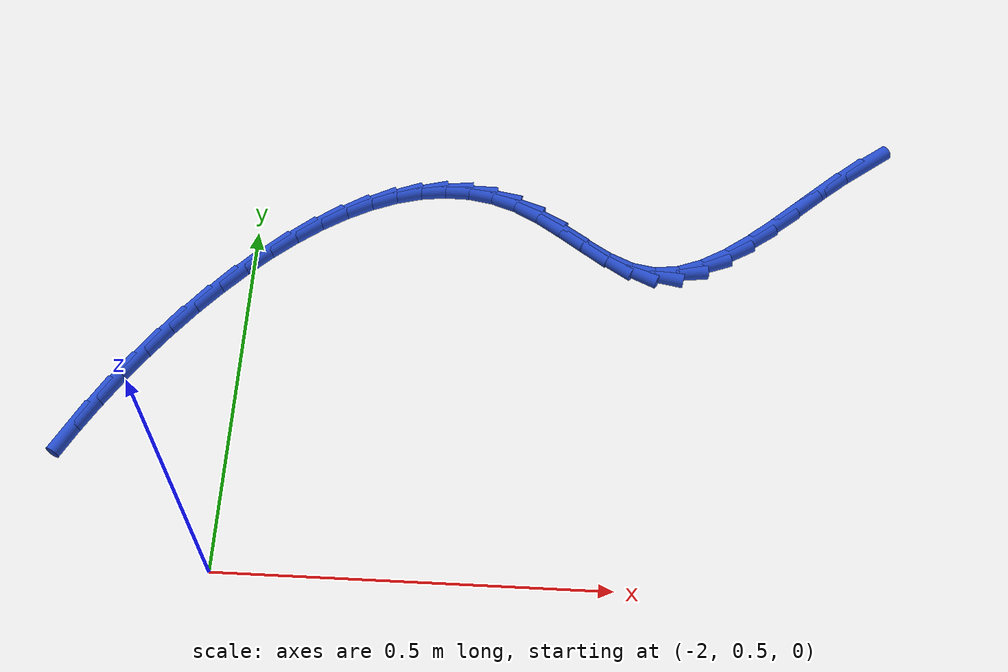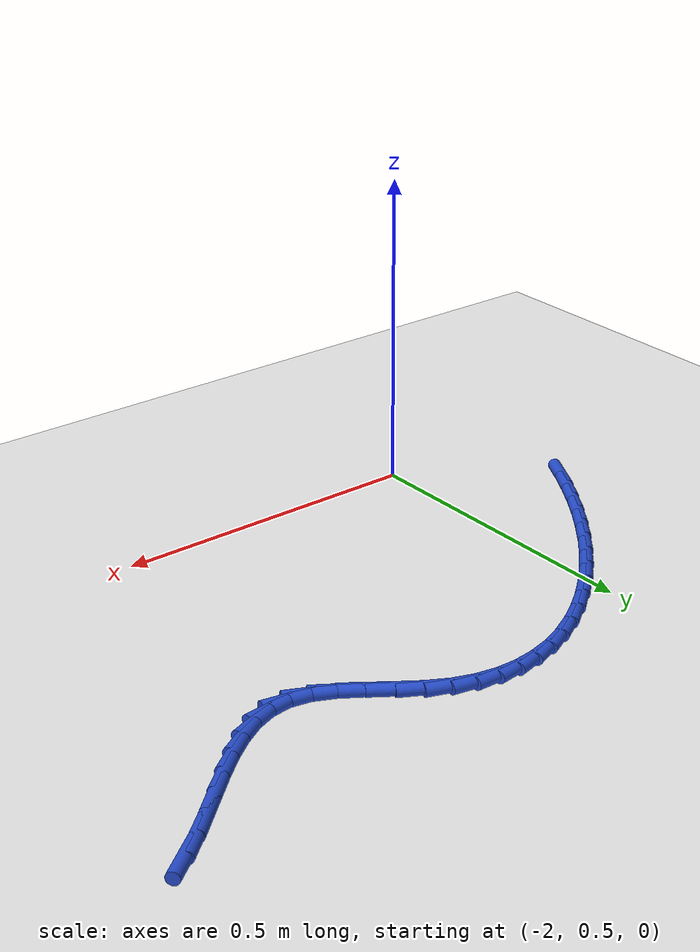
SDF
<sdf version="1.6">
 <world name="default">
  <model name="ground_plane">
   <static>1</static>
   <link name="link">
    <collision name="collision">
     <geometry><plane><normal>0 0 1</normal><size>100 100</size></plane></geometry>
     <surface><friction><ode><mu>100</mu><mu2>50</mu2></ode></friction></surface>
    </collision>
    <visual name="visual">
     <cast_shadows>0</cast_shadows>
     <geometry><plane><normal>0 0 1</normal><size>100 100</size></plane></geometry>
     <material>
      <script><uri>file://media/materials/scripts/gazebo.material</uri><name>Gazebo/WhiteGlow</name></script>
     </material>
    </visual>
   </link>
  </model>
  <model name="line">
   <link name="link_50">
    <pose>-1.1548657924680907 1.1544109606910593 0.01 0 1.57 0.6456836770044759</pose>
    <collision name="collision">
     <geometry><cylinder><radius>0.01</radius><length>0.08</length></cylinder></geometry>
    </collision>
    <visual name="visual">
     <material>
      <script><name>Gazebo/Blue</name><uri>file://media/materials/scripts/gazebo.material</uri></script>
     </material>
     <geometry><cylinder><radius>0.01</radius><length>0.08</length></cylinder></geometry>
    </visual>
   </link>
   <link name="link_51">
    <pose>-1.1877144624271152 1.129662251771773 0.01 0 1.57 0.702430429451977</pose>
    <collision name="collision">
     <geometry><cylinder><radius>0.01</radius><length>0.08</length></cylinder></geometry>
    </collision>
    <visual name="visual">
     <material>
      <script><name>Gazebo/Blue</name><uri>file://media/materials/scripts/gazebo.material</uri></script>
     </material>
     <geometry><cylinder><radius>0.01</radius><length>0.08</length></cylinder></geometry>
    </visual>
   </link>
   <link name="link_52">
    <pose>-1.2207835159981775 1.101670898193779 0.01 0 1.57 0.7272583935490622</pose>
    <collision name="collision">
     <geometry><cylinder><radius>0.01</radius><length>0.08</length></cylinder></geometry>
    </collision>
    <visual name="visual">
     <material>
      <script><name>Gazebo/Blue</name><uri>file://media/materials/scripts/gazebo.material</uri></script>
     </material>
     <geometry><cylinder><radius>0.01</radius><length>0.08</length></cylinder></geometry>
    </visual>
   </link>
   <link name="link_53">
    <pose>-1.2539974029087042 1.0721107944591506 0.01 0 1.57 0.7244548420812014</pose>
    <collision name="collision">
     <geometry><cylinder><radius>0.01</radius><length>0.08</length></cylinder></geometry>
    </collision>
    <visual name="visual">
     <material>
      <script><name>Gazebo/Blue</name><uri>file://media/materials/scripts/gazebo.material</uri></script>
     </material>
     <geometry><cylinder><radius>0.01</radius><length>0.08</length></cylinder></geometry>
    </visual>
   </link>
   <link name="link_54">
    <pose>-1.287280572886123 1.0426558350699588 0.01 0 1.57 0.6937650496179695</pose>
    <collision name="collision">
     <geometry><cylinder><radius>0.01</radius><length>0.08</length></cylinder></geometry>
    </collision>
    <visual name="visual">
     <material>
      <script><name>Gazebo/Blue</name><uri>file://media/materials/scripts/gazebo.material</uri></script>
     </material>
     <geometry><cylinder><radius>0.01</radius><length>0.08</length></cylinder></geometry>
    </visual>
   </link>
   <link name="link_55">
    <pose>-1.3205574756578609 1.014979914528276 0.01 0 1.57 0.6303925082494315</pose>
    <collision name="collision">
     <geometry><cylinder><radius>0.01</radius><length>0.08</length></cylinder></geometry>
    </collision>
    <visual name="visual">
     <material>
      <script><name>Gazebo/Blue</name><uri>file://media/materials/scripts/gazebo.material</uri></script>
     </material>
     <geometry><cylinder><radius>0.01</radius><length>0.08</length></cylinder></geometry>
    </visual>
   </link>
   <link name="link_56">
    <pose>-1.3537525609513443 0.990756927336174 0.01 0 1.57 0.524094072703477</pose>
    <collision name="collision">
     <geometry><cylinder><radius>0.01</radius><length>0.08</length></cylinder></geometry>
    </collision>
    <visual name="visual">
     <material>
      <script><name>Gazebo/Blue</name><uri>file://media/materials/scripts/gazebo.material</uri></script>
     </material>
     <geometry><cylinder><radius>0.01</radius><length>0.08</length></cylinder></geometry>
    </visual>
   </link>
   <link name="link_57">
    <pose>-1.3867902784940016 0.9716607679957248 0.01 0 1.57 0.3586006119283363</pose>
    <collision name="collision">
     <geometry><cylinder><radius>0.01</radius><length>0.08</length></cylinder></geometry>
    </collision>
    <visual name="visual">
     <material>
      <script><name>Gazebo/Blue</name><uri>file://media/materials/scripts/gazebo.material</uri></script>
     </material>
     <geometry><cylinder><radius>0.01</radius><length>0.08</length></cylinder></geometry>
    </visual>
   </link>
   <link name="link_58">
    <pose>-1.4195950780132582 0.9593653310090001 0.01 0 1.57 0.11703961110177963</pose>
    <collision name="collision">
     <geometry><cylinder><radius>0.01</radius><length>0.08</length></cylinder></geometry>
    </collision>
    <visual name="visual">
     <material>
      <script><name>Gazebo/Blue</name><uri>file://media/materials/scripts/gazebo.material</uri></script>
     </material>
     <geometry><cylinder><radius>0.01</radius><length>0.08</length></cylinder></geometry>
    </visual>
   </link>
   <link name="link_59">
    <pose>-1.4520914092365431 0.955544510878072 0.01 0 1.57 -0.18950009768322418</pose>
    <collision name="collision">
     <geometry><cylinder><radius>0.01</radius><length>0.08</length></cylinder></geometry>
    </collision>
    <visual name="visual">
     <material>
      <script><name>Gazebo/Blue</name><uri>file://media/materials/scripts/gazebo.material</uri></script>
     </material>
     <geometry><cylinder><radius>0.01</radius><length>0.08</length></cylinder></geometry>
    </visual>
   </link>
   <link name="link_60">
    <pose>-1.4842132125528649 0.9617055207821021 0.01 0 1.57 -0.44080182856185796</pose>
    <collision name="collision">
     <geometry><cylinder><radius>0.01</radius><length>0.08</length></cylinder></geometry>
    </collision>
    <visual name="visual">
     <material>
      <script><name>Gazebo/Blue</name><uri>file://media/materials/scripts/gazebo.material</uri></script>
     </material>
     <geometry><cylinder><radius>0.01</radius><length>0.08</length></cylinder></geometry>
    </visual>
   </link>
   <link name="link_61">
    <pose>-1.516044369842912 0.9767222015085499 0.01 0 1.57 -0.5766342609409975</pose>
    <collision name="collision">
     <geometry><cylinder><radius>0.01</radius><length>0.08</length></cylinder></geometry>
    </collision>
    <visual name="visual">
     <material>
      <script><name>Gazebo/Blue</name><uri>file://media/materials/scripts/gazebo.material</uri></script>
     </material>
     <geometry><cylinder><radius>0.01</radius><length>0.08</length></cylinder></geometry>
    </visual>
   </link>
   <link name="link_62">
    <pose>-1.5477883851003071 0.9973675105861908 0.01 0 1.57 -0.6249845077806354</pose>
    <collision name="collision">
     <geometry><cylinder><radius>0.01</radius><length>0.08</length></cylinder></geometry>
    </collision>
    <visual name="visual">
     <material>
      <script><name>Gazebo/Blue</name><uri>file://media/materials/scripts/gazebo.material</uri></script>
     </material>
     <geometry><cylinder><radius>0.01</radius><length>0.08</length></cylinder></geometry>
    </visual>
   </link>
   <link name="link_63">
    <pose>-1.5796520919291819 1.0203559287053485 0.01 0 1.57 -0.6004968038015023</pose>
    <collision name="collision">
     <geometry><cylinder><radius>0.01</radius><length>0.08</length></cylinder></geometry>
    </collision>
    <visual name="visual">
     <material>
      <script><name>Gazebo/Blue</name><uri>file://media/materials/scripts/gazebo.material</uri></script>
     </material>
     <geometry><cylinder><radius>0.01</radius><length>0.08</length></cylinder></geometry>
    </visual>
   </link>
   <link name="link_64">
    <pose>-1.611842323933668 1.0424019365563462 0.01 0 1.57 -0.4995642378201424</pose>
    <collision name="collision">
     <geometry><cylinder><radius>0.01</radius><length>0.08</length></cylinder></geometry>
    </collision>
    <visual name="visual">
     <material>
      <script><name>Gazebo/Blue</name><uri>file://media/materials/scripts/gazebo.material</uri></script>
     </material>
     <geometry><cylinder><radius>0.01</radius><length>0.08</length></cylinder></geometry>
    </visual>
   </link>
   <link name="link_65">
    <pose>-1.644562260707341 1.060258410495363 0.01 0 1.57 -0.34372883033076274</pose>
    <collision name="collision">
     <geometry><cylinder><radius>0.01</radius><length>0.08</length></cylinder></geometry>
    </collision>
    <visual name="visual">
     <material>
      <script><name>Gazebo/Blue</name><uri>file://media/materials/scripts/gazebo.material</uri></script>
     </material>
     <geometry><cylinder><radius>0.01</radius><length>0.08</length></cylinder></geometry>
    </visual>
   </link>
   <link name="link_66">
    <pose>-1.6778720439172352 1.0721812429063255 0.01 0 1.57 -0.18165765670270456</pose>
    <collision name="collision">
     <geometry><cylinder><radius>0.01</radius><length>0.08</length></cylinder></geometry>
    </collision>
    <visual name="visual">
     <material>
      <script><name>Gazebo/Blue</name><uri>file://media/materials/scripts/gazebo.material</uri></script>
     </material>
     <geometry><cylinder><radius>0.01</radius><length>0.08</length></cylinder></geometry>
    </visual>
   </link>
   <link name="link_67">
    <pose>-1.7116454301469795 1.0783848260931965 0.01 0 1.57 -0.024343207805434485</pose>
    <collision name="collision">
     <geometry><cylinder><radius>0.01</radius><length>0.08</length></cylinder></geometry>
    </collision>
    <visual name="visual">
     <material>
      <script><name>Gazebo/Blue</name><uri>file://media/materials/scripts/gazebo.material</uri></script>
     </material>
     <geometry><cylinder><radius>0.01</radius><length>0.08</length></cylinder></geometry>
    </visual>
   </link>
   <link name="link_68">
    <pose>-1.7457436616683435 1.0792150504301001 0.01 0 1.57 0.12181842004860759</pose>
    <collision name="collision">
     <geometry><cylinder><radius>0.01</radius><length>0.08</length></cylinder></geometry>
    </collision>
    <visual name="visual">
     <material>
      <script><name>Gazebo/Blue</name><uri>file://media/materials/scripts/gazebo.material</uri></script>
     </material>
     <geometry><cylinder><radius>0.01</radius><length>0.08</length></cylinder></geometry>
    </visual>
   </link>
   <link name="link_69">
    <pose>-1.7800279807530974 1.0750178062911597 0.01 0 1.57 0.2530742193766821</pose>
    <collision name="collision">
     <geometry><cylinder><radius>0.01</radius><length>0.08</length></cylinder></geometry>
    </collision>
    <visual name="visual">
     <material>
      <script><name>Gazebo/Blue</name><uri>file://media/materials/scripts/gazebo.material</uri></script>
     </material>
     <geometry><cylinder><radius>0.01</radius><length>0.08</length></cylinder></geometry>
    </visual>
   </link>
   <link name="link_70">
    <pose>-1.8143596296730113 1.0661389840504993 0.01 0 1.57 0.368323148087801</pose>
    <collision name="collision">
     <geometry><cylinder><radius>0.01</radius><length>0.08</length></cylinder></geometry>
    </collision>
    <visual name="visual">
     <material>
      <script><name>Gazebo/Blue</name><uri>file://media/materials/scripts/gazebo.material</uri></script>
     </material>
     <geometry><cylinder><radius>0.01</radius><length>0.08</length></cylinder></geometry>
    </visual>
   </link>
   <link name="link_71">
    <pose>-1.8485998506998549 1.0529244740822434 0.01 0 1.57 0.4683243968012774</pose>
    <collision name="collision">
     <geometry><cylinder><radius>0.01</radius><length>0.08</length></cylinder></geometry>
    </collision>
    <visual name="visual">
     <material>
      <script><name>Gazebo/Blue</name><uri>file://media/materials/scripts/gazebo.material</uri></script>
     </material>
     <geometry><cylinder><radius>0.01</radius><length>0.08</length></cylinder></geometry>
    </visual>
   </link>
   <link name="link_72">
    <pose>-1.8826098861054001 1.0357201667605145 0.01 0 1.57 0.5547968144490095</pose>
    <collision name="collision">
     <geometry><cylinder><radius>0.01</radius><length>0.08</length></cylinder></geometry>
    </collision>
    <visual name="visual">
     <material>
      <script><name>Gazebo/Blue</name><uri>file://media/materials/scripts/gazebo.material</uri></script>
     </material>
     <geometry><cylinder><radius>0.01</radius><length>0.08</length></cylinder></geometry>
    </visual>
   </link>
   <link name="link_73">
    <pose>-1.9162509781614152 1.0148719524594372 0.01 0 1.57 0.6297671901206277</pose>
    <collision name="collision">
     <geometry><cylinder><radius>0.01</radius><length>0.08</length></cylinder></geometry>
    </collision>
    <visual name="visual">
     <material>
      <script><name>Gazebo/Blue</name><uri>file://media/materials/scripts/gazebo.material</uri></script>
     </material>
     <geometry><cylinder><radius>0.01</radius><length>0.08</length></cylinder></geometry>
    </visual>
   </link>
   <link name="link_74">
    <pose>-1.949384369139671 0.9907257215531348 0.01 0 1.57 0.6952088441628442</pose>
    <collision name="collision">
     <geometry><cylinder><radius>0.01</radius><length>0.08</length></cylinder></geometry>
    </collision>
    <visual name="visual">
     <material>
      <script><name>Gazebo/Blue</name><uri>file://media/materials/scripts/gazebo.material</uri></script>
     </material>
     <geometry><cylinder><radius>0.01</radius><length>0.08</length></cylinder></geometry>
    </visual>
   </link>
   <link name="link_75">
    <pose>-1.9818713013119378 0.9636273644157314 0.01 0 1.57 0.7528865374459031</pose>
    <collision name="collision">
     <geometry><cylinder><radius>0.01</radius><length>0.08</length></cylinder></geometry>
    </collision>
    <visual name="visual">
     <material>
      <script><name>Gazebo/Blue</name><uri>file://media/materials/scripts/gazebo.material</uri></script>
     </material>
     <geometry><cylinder><radius>0.01</radius><length>0.08</length></cylinder></geometry>
    </visual>
   </link>
   <link name="link_76">
    <pose>-2.013573016949985 0.9339227714213503 0.01 0 1.57 0.8043175887512058</pose>
    <collision name="collision">
     <geometry><cylinder><radius>0.01</radius><length>0.08</length></cylinder></geometry>
    </collision>
    <visual name="visual">
     <material>
      <script><name>Gazebo/Blue</name><uri>file://media/materials/scripts/gazebo.material</uri></script>
     </material>
     <geometry><cylinder><radius>0.01</radius><length>0.08</length></cylinder></geometry>
    </visual>
   </link>
   <link name="link_77">
    <pose>-2.044350758325583 0.9019578329441158 0.01 0 1.57 0.8507883055800376</pose>
    <collision name="collision">
     <geometry><cylinder><radius>0.01</radius><length>0.08</length></cylinder></geometry>
    </collision>
    <visual name="visual">
     <material>
      <script><name>Gazebo/Blue</name><uri>file://media/materials/scripts/gazebo.material</uri></script>
     </material>
     <geometry><cylinder><radius>0.01</radius><length>0.08</length></cylinder></geometry>
    </visual>
   </link>
   <link name="link_78">
    <pose>-2.074065767710503 0.8680784393581514 0.01 0 1.57 0.893392221034686</pose>
    <collision name="collision">
     <geometry><cylinder><radius>0.01</radius><length>0.08</length></cylinder></geometry>
    </collision>
    <visual name="visual">
     <material>
      <script><name>Gazebo/Blue</name><uri>file://media/materials/scripts/gazebo.material</uri></script>
     </material>
     <geometry><cylinder><radius>0.01</radius><length>0.08</length></cylinder></geometry>
    </visual>
   </link>
   <link name="link_79">
    <pose>-2.1025792873765137 0.8326304810375809 0.01 0 1.57 0.9330742754965439</pose>
    <collision name="collision">
     <geometry><cylinder><radius>0.01</radius><length>0.08</length></cylinder></geometry>
    </collision>
    <visual name="visual">
     <material>
      <script><name>Gazebo/Blue</name><uri>file://media/materials/scripts/gazebo.material</uri></script>
     </material>
     <geometry><cylinder><radius>0.01</radius><length>0.08</length></cylinder></geometry>
    </visual>
   </link>
   <link name="link_80">
    <pose>-2.129752559595386 0.7959598483565278 0.01 0 1.57 0.9706748366419309</pose>
    <collision name="collision">
     <geometry><cylinder><radius>0.01</radius><length>0.08</length></cylinder></geometry>
    </collision>
    <visual name="visual">
     <material>
      <script><name>Gazebo/Blue</name><uri>file://media/materials/scripts/gazebo.material</uri></script>
     </material>
     <geometry><cylinder><radius>0.01</radius><length>0.08</length></cylinder></geometry>
    </visual>
   </link>
   <link name="link_81">
    <pose>-2.1554468266388893 0.7584124316891162 0.01 0 1.57 1.0069725067876298</pose>
    <collision name="collision">
     <geometry><cylinder><radius>0.01</radius><length>0.08</length></cylinder></geometry>
    </collision>
    <visual name="visual">
     <material>
      <script><name>Gazebo/Blue</name><uri>file://media/materials/scripts/gazebo.material</uri></script>
     </material>
     <geometry><cylinder><radius>0.01</radius><length>0.08</length></cylinder></geometry>
    </visual>
   </link>
   <link name="link_82">
    <pose>-2.1795233307787947 0.7203341214094698 0.01 0 1.57 1.0427273910908879</pose>
    <collision name="collision">
     <geometry><cylinder><radius>0.01</radius><length>0.08</length></cylinder></geometry>
    </collision>
    <visual name="visual">
     <material>
      <script><name>Gazebo/Blue</name><uri>file://media/materials/scripts/gazebo.material</uri></script>
     </material>
     <geometry><cylinder><radius>0.01</radius><length>0.08</length></cylinder></geometry>
    </visual>
   </link>
   <link name="link_83">
    <pose>-2.201843314286871 0.6820708078917123 0.01 0 1.57 1.0787299858051516</pose>
    <collision name="collision">
     <geometry><cylinder><radius>0.01</radius><length>0.08</length></cylinder></geometry>
    </collision>
    <visual name="visual">
     <material>
      <script><name>Gazebo/Blue</name><uri>file://media/materials/scripts/gazebo.material</uri></script>
     </material>
     <geometry><cylinder><radius>0.01</radius><length>0.08</length></cylinder></geometry>
    </visual>
   </link>
  </model>
 </world>
</sdf>
